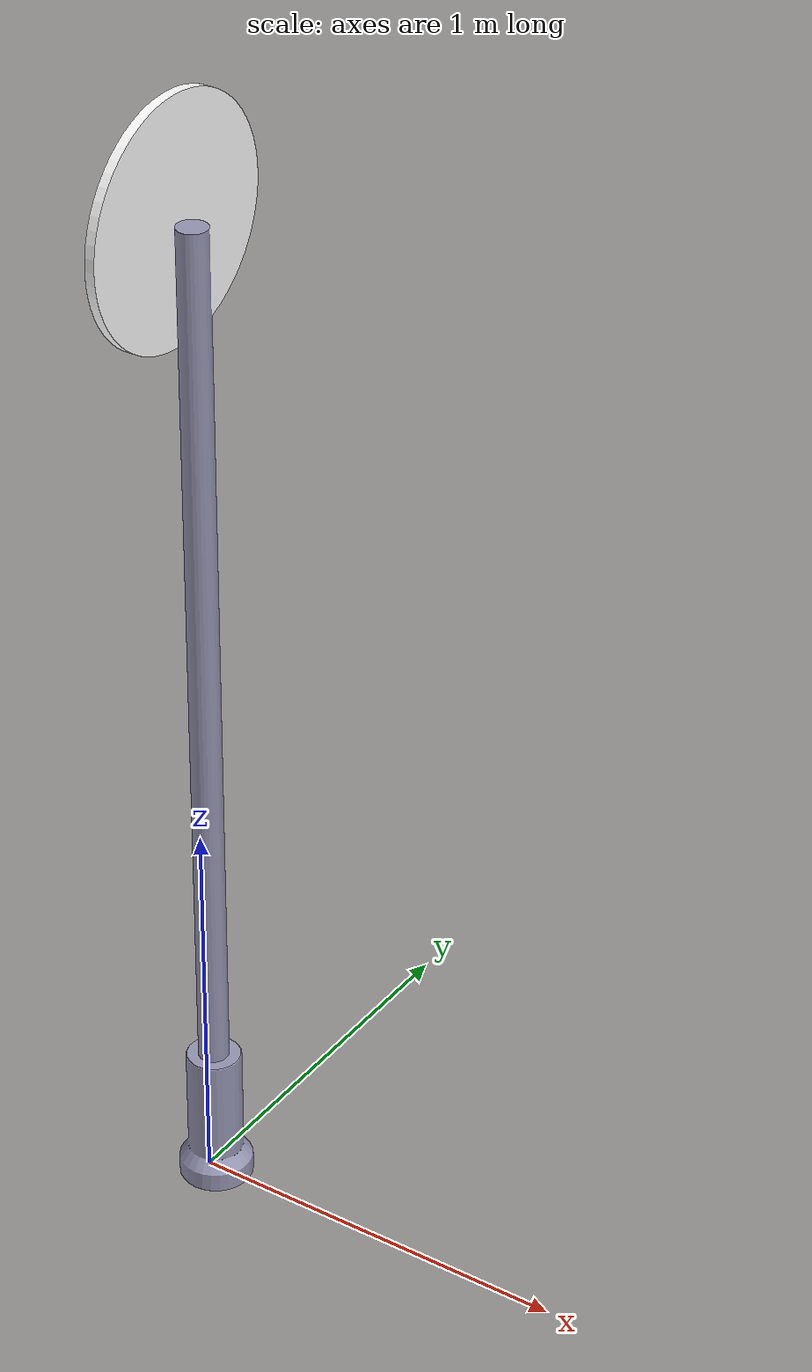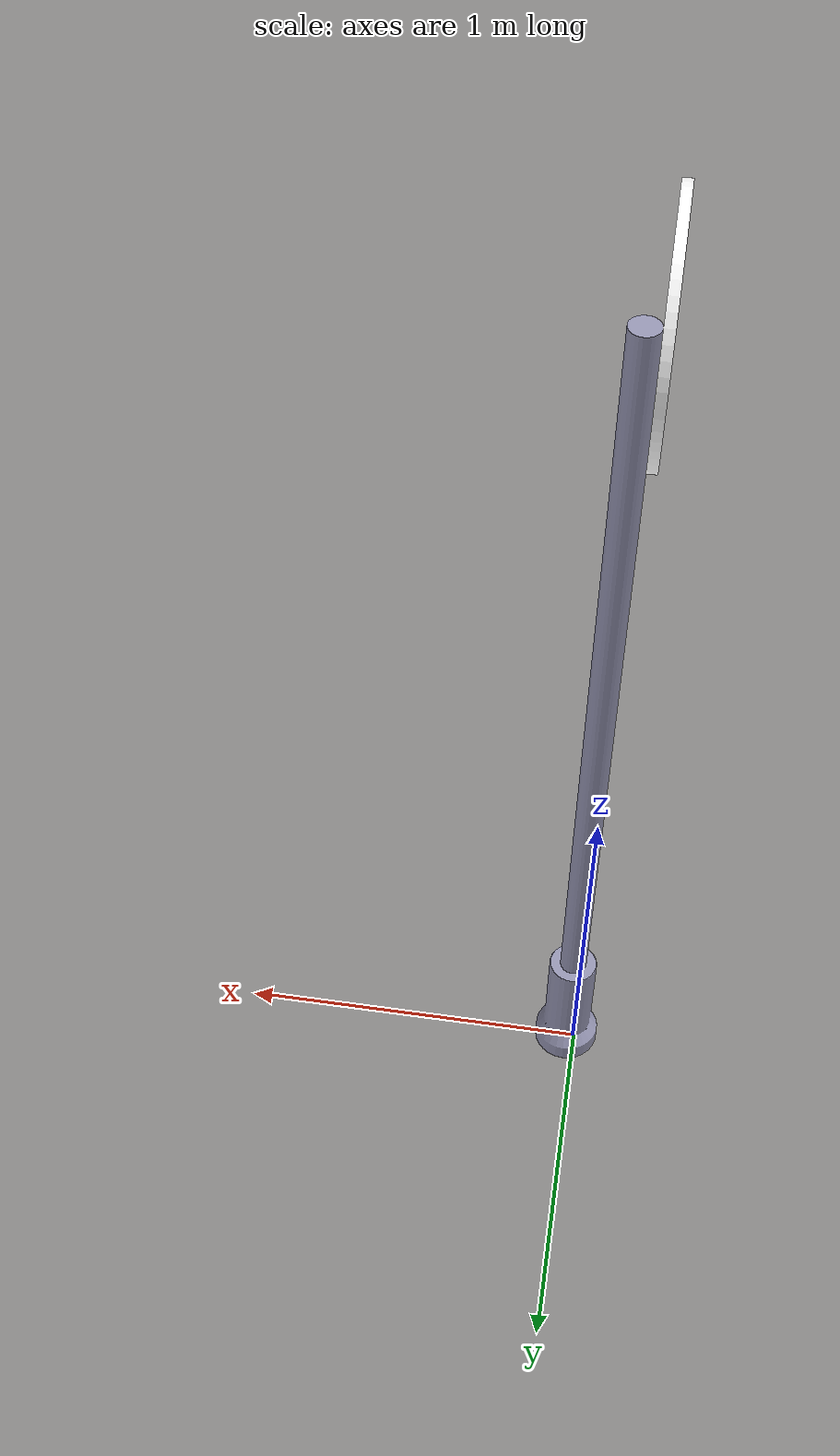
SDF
<?xml version="1.0"?>
<sdf version="1.5">
  <model name='SolaMecburiYonTabelasi'>
    <static>true</static>
    <link name="body">
      <pose>0 0 0 0 0 0</pose>

        <visual name="visual">
          <geometry>
            <mesh><uri>model://SolaMecburiYonTabelasi/meshes/SolaMecburiYonTabelasi.dae</uri></mesh>
          </geometry>
        </visual>

        <collision name="collision">
          <geometry>
            <mesh><uri>model://SolaMecburiYonTabelasi/meshes/SolaMecburiYonTabelasi.dae</uri></mesh>
          </geometry>
        </collision>

        <!-- TODO: Replace with accurate values of mass and inertia -->
        <inertial>
          <mass>1.0</mass>
          <inertia>
            <ixx>0.1</ixx>
            <iyy>0.1</iyy>
            <izz>0.1</izz>
          </inertia>
        </inertial>
    </link>
  </model>
</sdf>
